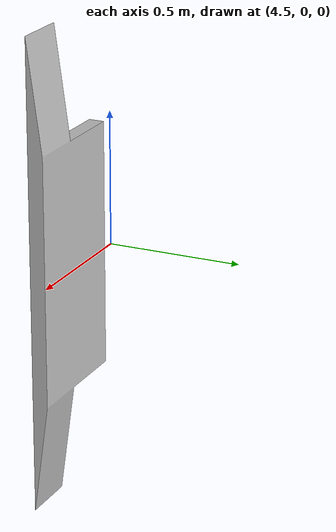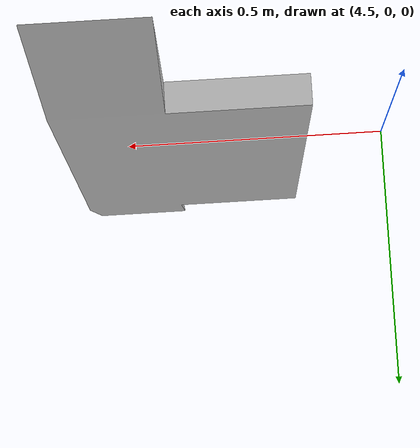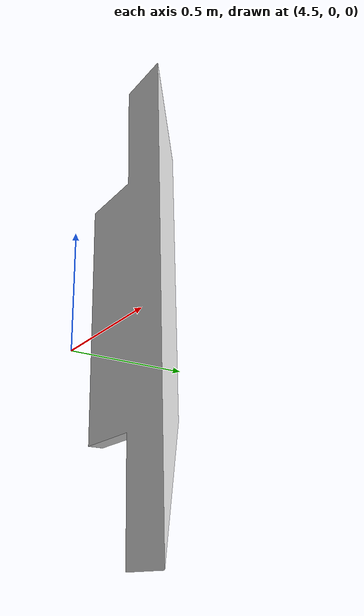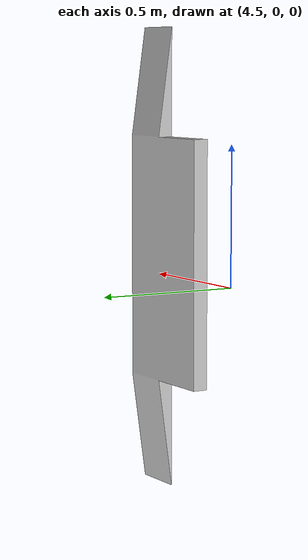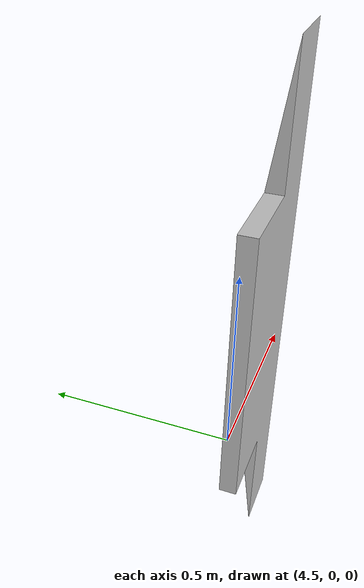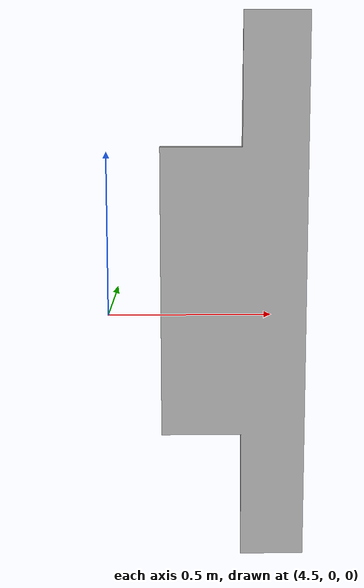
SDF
<?xml version="1.0" encoding="utf-8"?>
<sdf version="1.5">
  <model name="Stage">
    <pose>0 0 -3.25923390954698E-19 0 0 0</pose>

    <link name="Stage">
      <gravity>1</gravity>
      <self_collide>0</self_collide>
      <pose>1.47609413931829 0.00019965113432675 1.12469210153128 1.5707963267949 -1.74689243811446E-16 -3.14159265358979</pose>
      <must_be_base_link>1</must_be_base_link>
      <velocity_decay>
        <linear>0.1</linear>
        <angular>0.1</angular>
      </velocity_decay>
      <inertial>
        <mass>289.009279075633</mass>
        <pose>0 0 0 0 0 0</pose>
        <inertia>
          <ixx>316.583600498721</ixx>
          <ixy>1.06773947757279</ixy>
          <ixz>0.011048244797534</ixz>
          <iyy>413.456036064021</iyy>
          <iyz>0.00877118307191843</iyz>
          <izz>325.002834480315</izz>
        </inertia>
      </inertial>
      <collision name="Stage_collision">
        <pose>-3.4159776108571 -1.13212414153128 5.43488655693417E-05 0 0 0</pose>
        <geometry>
          <mesh>
            <scale>1 1 1</scale>
            <uri>model://Stage/meshes/Stage_col.STL</uri>
          </mesh>
        </geometry>
        <surface>
          <contact>
            <ode />
          </contact>
          <friction>
            <ode>
              <mu>2</mu>
              <mu2>2</mu2>
            </ode>
          </friction>
        </surface>
      </collision>
      <visual name="Stage_visual">
        <pose>-3.4159776108571 -1.13212414153128 5.43488655693417E-05 0 0 0</pose>
        <material>
          <ambient>0.752941176470588 0.752941176470588 0.752941176470588 1</ambient>
          <diffuse>0.752941176470588 0.752941176470588 0.752941176470588 1</diffuse>
        </material>
        <geometry>
          <mesh>
            <scale>1 1 1</scale>
            <uri>model://Stage/meshes/Stage.STL</uri>
          </mesh>
        </geometry>
      </visual>
    </link>
     <joint name="stage-World" type="fixed">
      <parent>world</parent>
      <child>Stage</child>
   </joint>

  </model>
</sdf>
